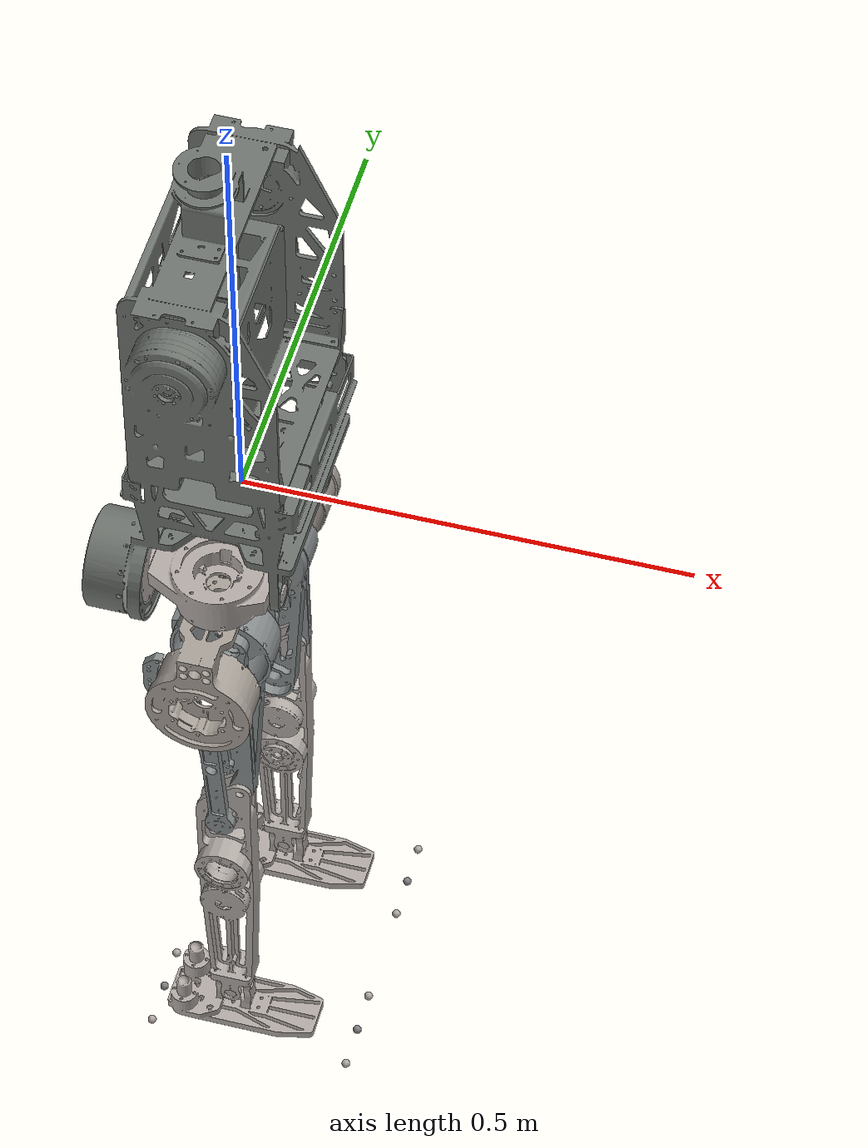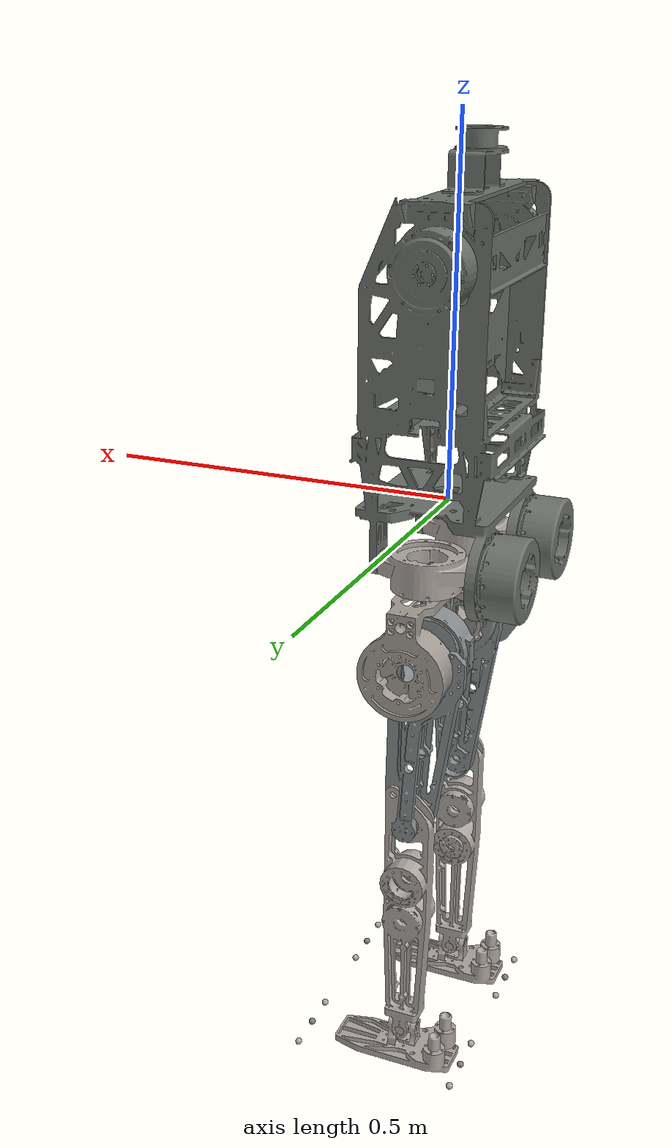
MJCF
<mujoco model="biped_s3">
    <compiler angle="radian" meshdir="../meshes/" />
    <size njmax="500" nconmax="100" />
    <asset>
        <mesh name="base_link" file="base_link.STL" />
        <mesh name="l_leg_roll" file="l_leg_roll.STL" />
        <mesh name="l_leg_yaw" file="l_leg_yaw.STL" />
        <mesh name="l_leg_pitch" file="l_leg_pitch.STL" />
        <mesh name="l_knee" file="l_knee.STL" />
        <mesh name="l_foot_pitch" file="l_foot_pitch.STL" />
        <mesh name="l_foot_roll" file="l_foot_roll.STL" />
        <mesh name="r_leg_roll" file="r_leg_roll.STL" />
        <mesh name="r_leg_yaw" file="r_leg_yaw.STL" />
        <mesh name="r_leg_pitch" file="r_leg_pitch.STL" />
        <mesh name="r_knee" file="r_knee.STL" />
        <mesh name="r_foot_pitch" file="r_foot_pitch.STL" />
        <mesh name="r_foot_roll" file="r_foot_roll.STL" />
    </asset>
    <worldbody>
        <geom type="mesh" contype="0" conaffinity="0" group="1" rgba="0.43137 0.45098 0.43137 1" mesh="base_link" />
        <body name="leg_l1_link" pos="-0.139 0.088087 -0.065549">
            <inertial pos="0.0661423 -1.19e-06 -0.00862806" quat="-0.00036611 0.685786 0.000388541 0.727803" mass="1.53801" diaginertia="0.00367033 0.00282649 0.00188822" />
            <joint name="leg_l1_joint" pos="0 0 0" axis="1 0 0" limited="true" range="-0.78 1.57" />
            <geom type="mesh" contype="0" conaffinity="0" group="1" rgba="0.6902 0.65882 0.63922 1" mesh="l_leg_roll" />
            <body name="leg_l2_link" pos="0.1365 -0.0010866 -0.033901">
                <inertial pos="0 0.046104 -0.132561" quat="0.406465 0.913665 0.00146124 -0.000707497" mass="1.60097" diaginertia="0.0069836 0.00577369 0.00365952" />
                <joint name="leg_l2_joint" pos="0 0 0" axis="0 0 1" limited="true" range="-1.57 1.57" />
                <geom type="mesh" contype="0" conaffinity="0" group="1" rgba="0.65098 0.61961 0.58824 1" mesh="l_leg_yaw" />
                <body name="leg_l3_link" pos="0 0.094 -0.09">
                    <inertial pos="-0.00644903 -0.0981356 -0.0535761" quat="0.680972 -0.0265435 0.0402869 0.730718" mass="2.46657" diaginertia="0.0233349 0.022619 0.00397939" />
                    <joint name="leg_l3_joint" pos="0 0 0" axis="0 1 0" limited="true" range="-2.35 0.78" />
                    <geom type="mesh" contype="0" conaffinity="0" group="1" rgba="0.52941 0.54902 0.54902 1" mesh="l_leg_pitch" />
                    <body name="leg_l4_link" pos="0.004136 -0.06635 -0.24997">
                        <inertial pos="0.00080045 -4.225e-05 -0.120497" quat="0.708481 -0.000629386 -0.0108666 0.705646" mass="1.62912" diaginertia="0.013595 0.0134393 0.000915523" />
                        <joint name="leg_l4_joint" pos="0 0 0" axis="0 1 0" limited="true" range="0 2.61" />
                        <geom type="mesh" contype="0" conaffinity="0" group="1" rgba="0.68627 0.65882 0.63922 1" mesh="l_knee" />
                        <body name="leg_l5_link" pos="0 -0.0022 -0.346">
                            <inertial pos="0 -0.0209998 0" mass="0.0544445" diaginertia="1.37e-06 1.37e-06 1.37e-06" />
                            <joint name="leg_l5_joint" pos="0 0 0" axis="0 1 0" limited="true" range="-1.57 1.57" />
                            <geom type="mesh" contype="0" conaffinity="0" group="1" rgba="0.6902 0.65882 0.63922 1" mesh="l_foot_pitch" />
                            <body name="leg_l6_link" pos="0 0 0">
                                <inertial pos="-0.0355077 9.71466e-06 -0.0272597" quat="-0.000229205 0.628048 -0.000281424 0.778175" mass="0.470217" diaginertia="0.00146681 0.00133526 0.000364416" />
                                <joint name="leg_l6_joint" pos="0 0 0" axis="1 0 0" limited="true" range="-1.39 1.39" />
                                <geom type="mesh" contype="0" conaffinity="0" group="1" rgba="0.6902 0.65882 0.63922 1" mesh="l_foot_roll" />
                                <geom size="0.005" pos="-0.09 0.05 -0.0465" contype="0" conaffinity="0" group="1" rgba="0.6902 0.65882 0.63922 1" />
                                <geom size="0.005" pos="-0.09 0.05 -0.0465" rgba="0.6902 0.65882 0.63922 1" />
                                <geom size="0.005" pos="-0.09 -0.05 -0.0465" contype="0" conaffinity="0" group="1" rgba="0.6902 0.65882 0.63922 1" />
                                <geom size="0.005" pos="-0.09 -0.05 -0.0465" rgba="0.6902 0.65882 0.63922 1" />
                                <geom size="0.005" pos="0.15 0.05 -0.0465" contype="0" conaffinity="0" group="1" rgba="0.6902 0.65882 0.63922 1" />
                                <geom size="0.005" pos="0.15 0.05 -0.0465" rgba="0.6902 0.65882 0.63922 1" />
                                <geom size="0.005" pos="0.15 -0.05 -0.0465" contype="0" conaffinity="0" group="1" rgba="0.6902 0.65882 0.63922 1" />
                                <geom size="0.005" pos="0.15 -0.05 -0.0465" rgba="0.6902 0.65882 0.63922 1" />
                                <geom size="0.005" pos="0.15 0.05 -0.0465" />
                                <geom size="0.005" pos="-0.09 0.05 -0.0465" />
                                <geom size="0.005" pos="0.15 -0.05 -0.0465" />
                                <geom size="0.005" pos="-0.09 -0.05 -0.0465" />
                                <geom size="0.005" pos="0.15 0 -0.0465" />
                                <geom size="0.005" pos="-0.09 0 -0.0465" />
                            </body>
                        </body>
                    </body>
                </body>
            </body>
        </body>
        <body name="leg_r1_link" pos="-0.139 -0.088087 -0.065549">
            <inertial pos="0.0661423 1.19e-06 -0.00862806" quat="0.000366114 0.685786 -0.000388545 0.727803" mass="1.53801" diaginertia="0.00367033 0.00282648 0.00188822" />
            <joint name="leg_r1_joint" pos="0 0 0" axis="1 0 0" limited="true" range="-1.57 0.78" />
            <geom type="mesh" contype="0" conaffinity="0" group="1" rgba="0.6902 0.65882 0.63922 1" mesh="r_leg_roll" />
            <body name="leg_r2_link" pos="0.1365 0.0010866 -0.033901">
                <inertial pos="4.661e-05 -0.0461036 -0.132574" quat="0.928414 0.371529 0.00156279 -0.00347123" mass="1.60097" diaginertia="0.00520443 0.00457962 0.00331423" />
                <joint name="leg_r2_joint" pos="0 0 0" axis="0 0 1" limited="true" range="-1.57 1.57" />
                <geom type="mesh" contype="0" conaffinity="0" group="1" rgba="0.65098 0.619608 0.588235 1" mesh="r_leg_yaw" />
                <body name="leg_r3_link" pos="0 -0.094 -0.09">
                    <inertial pos="-0.00644903 0.0981356 -0.0535761" quat="0.782763 0.0509103 -0.043864 0.618681" mass="2.46657" diaginertia="0.0236078 0.0224895 0.00397676" />
                    <joint name="leg_r3_joint" pos="0 0 0" axis="0 1 0" limited="true" range="-2.35 0.78" />
                    <geom type="mesh" contype="0" conaffinity="0" group="1" rgba="0.529412 0.54902 0.54902 1" mesh="r_leg_pitch" />
                    <body name="leg_r4_link" pos="0.004136 0.06635 -0.24997">
                        <inertial pos="0.00080045 4.225e-05 -0.120497" quat="0.705646 -0.0108666 -0.000629386 0.708481" mass="1.62912" diaginertia="0.013595 0.0134393 0.000915523" />
                        <joint name="leg_r4_joint" pos="0 0 0" axis="0 1 0" limited="true" range="0 2.61" />
                        <geom type="mesh" contype="0" conaffinity="0" group="1" rgba="0.686275 0.658824 0.639216 1" mesh="r_knee" />
                        <body name="leg_r5_link" pos="0 0.0022 -0.346">
                            <inertial pos="0 0.0210002 0" quat="0.5 0.5 -0.5 0.5" mass="0.0544445" diaginertia="7.28e-06 4.11e-06 4.11e-06" />
                            <joint name="leg_r5_joint" pos="0 0 0" axis="0 1 0" limited="true" range="-1.57 1.57" />
                            <geom type="mesh" contype="0" conaffinity="0" group="1" rgba="0.690196 0.658824 0.639216 1" mesh="r_foot_pitch" />
                            <body name="leg_r6_link" pos="0 0 0">
                                <inertial pos="-0.0355078 -9.65506e-06 -0.0272597" quat="0.00022933 0.628048 0.00028129 0.778175" mass="0.470216" diaginertia="0.0014668 0.00133526 0.000364406" />
                                <joint name="leg_r6_joint" pos="0 0 0" axis="1 0 0" limited="true" range="-1.39 1.39" />
                                <geom type="mesh" contype="0" conaffinity="0" group="1" rgba="0.690196 0.658824 0.639216 1" mesh="r_foot_roll" />
                                <geom size="0.005" pos="-0.09 0.05 -0.0465" contype="0" conaffinity="0" group="1" rgba="0.690196 0.658824 0.639216 1" />
                                <geom size="0.005" pos="-0.09 0.05 -0.0465" rgba="0.690196 0.658824 0.639216 1" />
                                <geom size="0.005" pos="-0.09 -0.05 -0.0465" contype="0" conaffinity="0" group="1" rgba="0.690196 0.658824 0.639216 1" />
                                <geom size="0.005" pos="-0.09 -0.05 -0.0465" rgba="0.690196 0.658824 0.639216 1" />
                                <geom size="0.005" pos="0.15 0.05 -0.0465" contype="0" conaffinity="0" group="1" rgba="0.690196 0.658824 0.639216 1" />
                                <geom size="0.005" pos="0.15 0.05 -0.0465" rgba="0.690196 0.658824 0.639216 1" />
                                <geom size="0.005" pos="0.15 -0.05 -0.0465" contype="0" conaffinity="0" group="1" rgba="0.690196 0.658824 0.639216 1" />
                                <geom size="0.005" pos="0.15 -0.05 -0.0465" rgba="0.690196 0.658824 0.639216 1" />
                                <geom size="0.005" pos="0.15 0.05 -0.0465" />
                                <geom size="0.005" pos="-0.09 0.05 -0.0465" />
                                <geom size="0.005" pos="0.15 -0.05 -0.0465" />
                                <geom size="0.005" pos="-0.09 -0.05 -0.0465" />
                                <geom size="0.005" pos="0.15 0 -0.0465" />
                                <geom size="0.005" pos="-0.09 0 -0.0465" />
                            </body>
                        </body>
                    </body>
                </body>
            </body>
        </body>
    </worldbody>
</mujoco>
